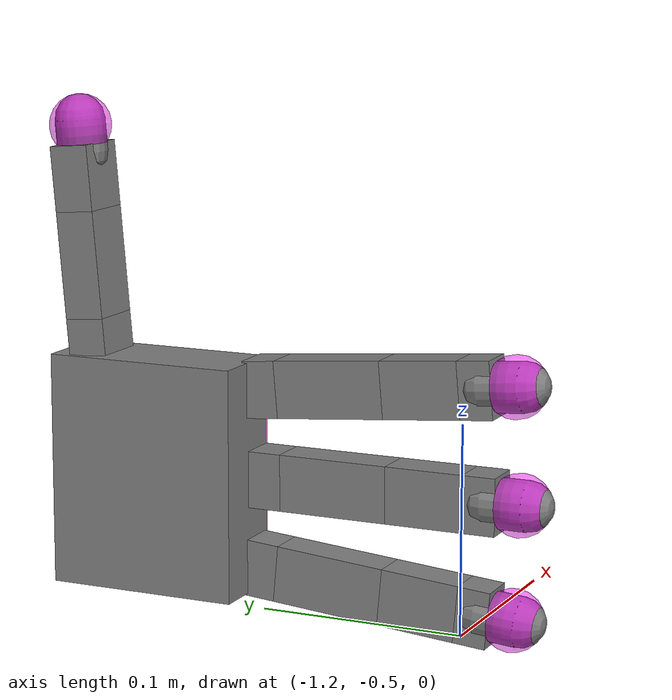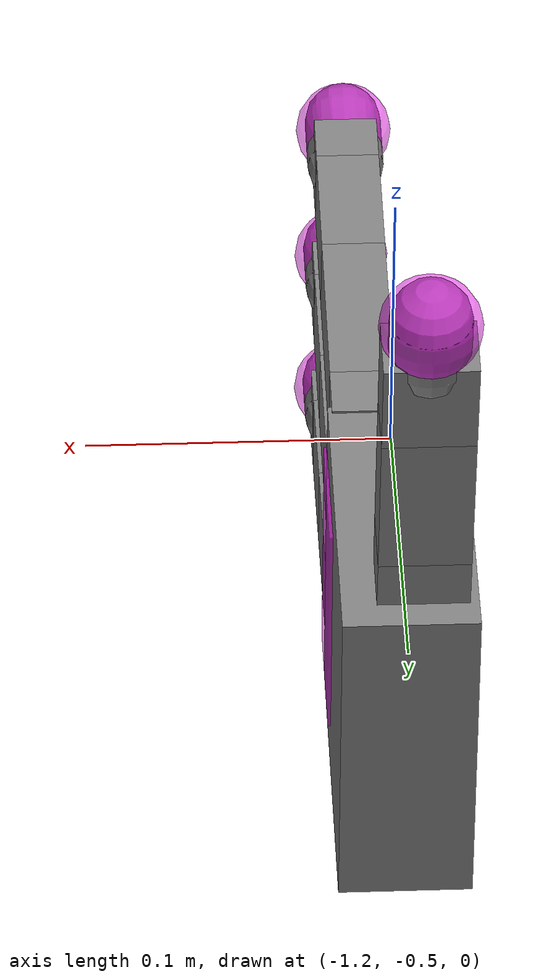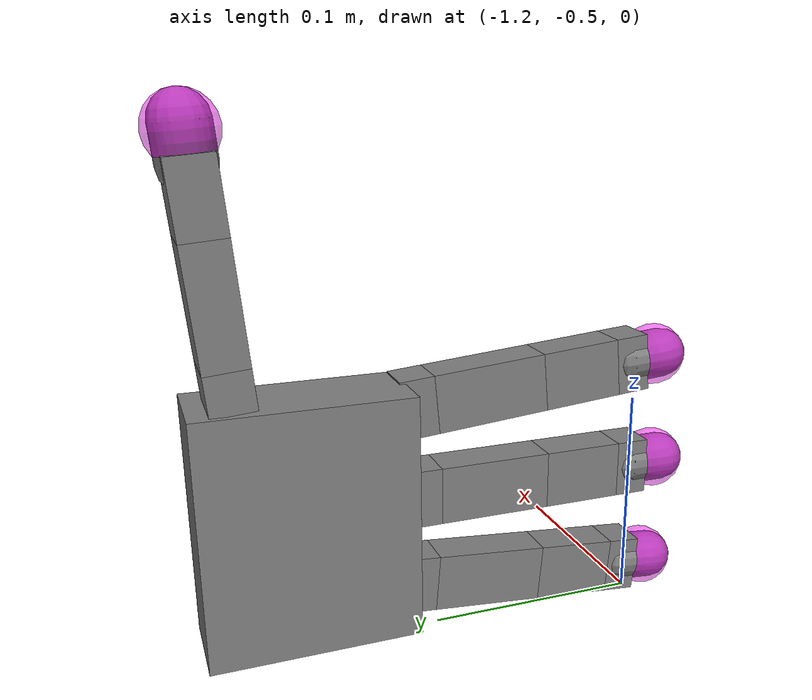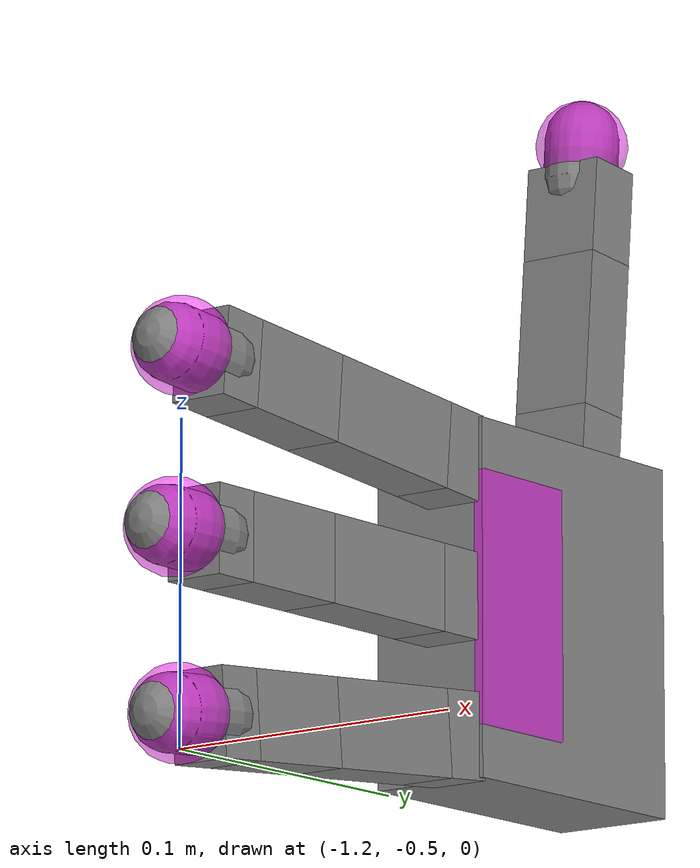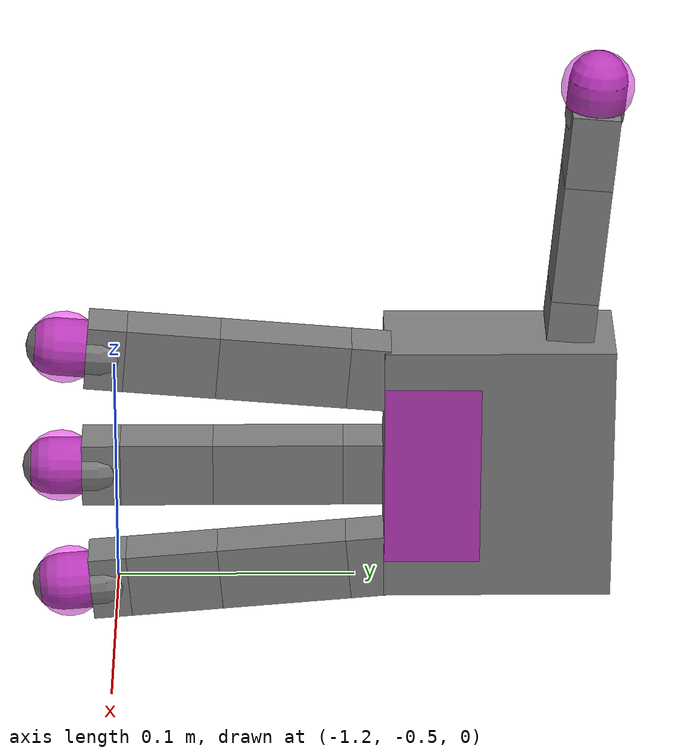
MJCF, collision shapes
<mujoco model="allegro_right">
  <!-- Match your repo layout (included from mj/full_combined.xml) -->
  <compiler angle="radian" meshdir="../assets/allegro/assets/" autolimits="true"/>

  <option cone="elliptic" impratio="10"/>

  <!-- Defaults: all Allegro-specific classes are prefixed algr_* to avoid collisions -->
  <default>
    <default class="allegro_right">
      <joint axis="0 1 0" damping=".1"/>
      <position kp="1"/>
      <geom density="800"/>

      <!-- Visual defaults (renamed) -->
      <default class="algr_visual">
        <geom type="mesh" contype="0" conaffinity="0" group="2" material="algr_black"/>
        <default class="algr_palm_visual">
          <geom mesh="base_link"/>
        </default>
        <default class="algr_base_visual">
          <geom mesh="link_0.0"/>
        </default>
        <default class="algr_proximal_visual">
          <geom mesh="link_1.0"/>
        </default>
        <default class="algr_medial_visual">
          <geom mesh="link_2.0"/>
        </default>
        <default class="algr_distal_visual">
          <geom mesh="link_3.0"/>
        </default>
        <default class="algr_fingertip_visual">
          <geom pos="0 0 0.0267" material="algr_white" mesh="link_3.0_tip"/>
        </default>
        <default class="algr_thumbtip_visual">
          <geom pos="0 0 0.0423" material="algr_white" mesh="link_15.0_tip"/>
        </default>
      </default>

      <!-- Collision defaults (renamed) -->
      <default class="algr_collision">
        <geom group="3" type="box" mass="0"/>
        <default class="algr_palm_collision">
          <geom size="0.0204 0.0565 0.0475" pos="-0.0093 0 -0.0475"/>
        </default>
        <default class="algr_base_collision">
          <geom size="0.0098 0.01375 0.0082" pos="0 0 0.0082"/>
          <default class="algr_thumb_base_collision">
            <geom size="0.0179 0.017 0.02275" pos="-0.0179 0.009 0.0145"/>
          </default>
        </default>
        <default class="algr_proximal_collision">
          <geom size="0.0098 0.01375 0.027" pos="0 0 0.027"/>
          <default class="algr_thumb_proximal_collision">
            <geom size="0.0098 0.01375 0.00885" pos="0 0 0.00885"/>
          </default>
        </default>
        <default class="algr_medial_collision">
          <geom size="0.0098 0.01375 0.0192" pos="0 0 0.0192"/>
          <default class="algr_thumb_medial_collision">
            <geom size="0.0098 0.01375 0.0257" pos="0 0 0.0257"/>
          </default>
        </default>
        <default class="algr_distal_collision">
          <geom size="0.0098 0.01375 0.008" pos="0 0 0.008"/>
          <default class="algr_thumb_distal_collision">
            <geom size="0.0098 0.01375 0.0157" pos="0 0 0.0157"/>
          </default>
        </default>
        <default class="algr_fingertip_collision">
          <geom type="capsule" size="0.012 0.01" pos="0 0 0.019"/>
          <default class="algr_thumbtip_collision">
            <geom type="capsule" size="0.012 0.008" pos="0 0 0.035"/>
          </default>
        </default>
      </default>

      <!-- These actuator/joint default classes don't collide with UR; keep as-is -->
      <default class="base">
        <joint axis="0 0 1" range="-0.47 0.47"/>
        <position ctrlrange="-0.47 0.47"/>
      </default>
      <default class="proximal">
        <joint range="-0.196 1.61"/>
        <position ctrlrange="-0.196 1.61"/>
      </default>
      <default class="medial">
        <joint range="-0.174 1.709"/>
        <position ctrlrange="-0.174 1.709"/>
      </default>
      <default class="distal">
        <joint range="-0.227 1.618"/>
        <position ctrlrange="-0.227 1.618"/>
      </default>
      <default class="thumb_base">
        <joint axis="-1 0 0" range="0.263 1.396"/>
        <position ctrlrange="0.263 1.396"/>
      </default>
      <default class="thumb_proximal">
        <joint axis="0 0 1" range="-0.105 1.163"/>
        <position ctrlrange="-0.105 1.163"/>
      </default>
      <default class="thumb_medial">
        <joint range="-0.189 1.644"/>
        <position ctrlrange="-0.189 1.644"/>
      </default>
      <default class="thumb_distal">
        <joint range="-0.162 1.719"/>
        <position ctrlrange="-0.162 1.719"/>
      </default>
    </default>
  </default>

  <!-- Unique material names to avoid conflicts with UR's "black"/"white" -->
  <asset>
    <material name="algr_black" rgba="0.2 0.2 0.2 1"/>
    <material name="algr_white" rgba="0.9 0.9 0.9 1"/>

    <mesh file="../allegro/assets/base_link.stl"/>
    <mesh file="../allegro/assets/link_0.0.stl"/>
    <mesh file="../allegro/assets/link_1.0.stl"/>
    <mesh file="../allegro/assets/link_2.0.stl"/>
    <mesh file="../allegro/assets/link_3.0.stl"/>
    <mesh file="../allegro/assets/link_3.0_tip.stl"/>
    <mesh file="../allegro/assets/link_12.0_right.stl"/>
    <mesh file="../allegro/assets/link_13.0.stl"/>
    <mesh file="../allegro/assets/link_14.0.stl"/>
    <mesh file="../allegro/assets/link_15.0.stl"/>
    <mesh file="../allegro/assets/link_15.0_tip.stl"/>
  </asset>

  <worldbody>
    <body name="palm" pos="-1.184000 -0.388000 0.061000" quat="0.707107 0.707107 0.000000 0.000000" childclass="allegro_right">
      <site name="palm_axis" pos="0 0 0" size="0.01" rgba="1 1 1 0"/>
      <site name="palm_grid_site"
      type="box" size="0.02 0.04 0.002"
      pos="0.01 0.0 -0.02"
      quat="0.70710678 0 0.70710678 0"
      rgba="1 0 1 0.5"/>
      <joint name="palm_free" type="free"/>
      <geom class="algr_palm_visual"/>
      <geom class="algr_palm_collision"/>

      <!-- First finger -->
      <body name="ff_base" pos="0 0.0435 -0.001542" quat="0.999048 -0.0436194 0 0">
        <joint name="ffj0" class="base"/>
        <geom class="algr_base_visual"/>
        <geom class="algr_base_collision"/>
        <body name="ff_proximal" pos="0 0 0.0164">
          <joint name="ffj1" class="proximal"/>
          <geom class="algr_proximal_visual"/>
          <geom class="algr_proximal_collision"/>
          <body name="ff_medial" pos="0 0 0.054">
            <joint name="ffj2" class="medial"/>
            <geom class="algr_medial_visual"/>
            <geom class="algr_medial_collision"/>
            <body name="ff_distal" pos="0 0 0.0384">
              <joint name="ffj3" class="distal"/>
              <geom class="algr_distal_visual"/>
              <geom class="algr_distal_collision"/>
              <body name="ff_tip">
                <site name="ff_tip_grid_site"
                  pos="0 0 0.025"
                  quat="1 0 0 0"
                  type="sphere" size="0.015"
                  rgba="1 0 1 0.5"/>
                <geom class="algr_fingertip_visual"/>
                <geom class="algr_fingertip_collision"/>
              </body>
            </body>
          </body>
        </body>
      </body>

      <!-- Middle finger -->
      <body name="mf_base" pos="0 0 0.0007">
        <joint name="mfj0" class="base"/>
        <geom class="algr_base_visual"/>
        <geom class="algr_base_collision"/>
        <body name="mf_proximal" pos="0 0 0.0164">
          <joint name="mfj1" class="proximal"/>
          <geom class="algr_proximal_visual"/>
          <geom class="algr_proximal_collision"/>
          <body name="mf_medial" pos="0 0 0.054">
            <joint name="mfj2" class="medial"/>
            <geom class="algr_medial_visual"/>
            <geom class="algr_medial_collision"/>
            <body name="mf_distal" pos="0 0 0.0384">
              <joint name="mfj3" class="distal"/>
              <geom class="algr_distal_visual"/>
              <geom class="algr_distal_collision"/>
              <body name="mf_tip">
                <site name="mf_tip_grid_site"
                  pos="0 0 0.025"
                  quat="1 0 0 0"
                  type="sphere" size="0.015"
                  rgba="1 0 1 0.5"/>
                <geom class="algr_fingertip_visual"/>
                <geom class="algr_fingertip_collision"/>
              </body>
            </body>
          </body>
        </body>
      </body>

      <!-- Ring finger -->
      <body name="rf_base" pos="0 -0.0435 -0.001542" quat="0.999048 0.0436194 0 0">
        <joint name="rfj0" class="base"/>
        <geom class="algr_base_visual"/>
        <geom class="algr_base_collision"/>
        <body name="rf_proximal" pos="0 0 0.0164">
          <joint name="rfj1" class="proximal"/>
          <geom class="algr_proximal_visual"/>
          <geom class="algr_proximal_collision"/>
          <body name="rf_medial" pos="0 0 0.054">
            <joint name="rfj2" class="medial"/>
            <geom class="algr_medial_visual"/>
            <geom class="algr_medial_collision"/>
            <body name="rf_distal" pos="0 0 0.0384">
              <joint name="rfj3" class="distal"/>
              <geom class="algr_distal_visual"/>
              <geom class="algr_distal_collision"/>
              <body name="rf_tip">
                <site name="rf_tip_grid_site"
                  pos="0 0 0.025"
                  quat="1 0 0 0"
                  type="sphere" size="0.015"
                  rgba="1 0 1 0.5"/>
                <geom class="algr_fingertip_visual"/>
                <geom class="algr_fingertip_collision"/>
              </body>
            </body>
          </body>
        </body>
      </body>

      <!-- Thumb -->
      <body name="th_base" pos="-0.0182 0.019333 -0.045987" quat="0.477714 -0.521334 -0.521334 -0.477714">
        <joint name="thj0" class="thumb_base"/>
        <geom class="algr_visual" mesh="link_12.0_right"/>
        <geom class="algr_thumb_base_collision"/>
        <body name="th_proximal" pos="-0.027 0.005 0.0399">
          <joint name="thj1" class="thumb_proximal"/>
          <geom class="algr_visual" mesh="link_13.0"/>
          <geom class="algr_thumb_proximal_collision"/>
          <body name="th_medial" pos="0 0 0.0177">
            <joint name="thj2" class="thumb_medial"/>
            <geom class="algr_visual" mesh="link_14.0"/>
            <geom class="algr_thumb_medial_collision"/>
            <body name="th_distal" pos="0 0 0.0514">
              <joint name="thj3" class="thumb_distal"/>
              <geom class="algr_visual" mesh="link_15.0"/>
              <geom class="algr_thumb_distal_collision"/>
              <body name="th_tip">
                <site name="th_tip_grid_site"
                  pos="0 0 0.040"
                  quat="1 0 0 0"
                  type="sphere" size="0.015"
                  rgba="1 0 1 0.5"/>
                <geom class="algr_thumbtip_visual"/>
                <geom class="algr_thumbtip_collision"/>
              </body>
            </body>
          </body>
        </body>
      </body>
    </body>
  </worldbody>

  <contact>
    <exclude body1="palm" body2="ff_base"/>
    <exclude body1="palm" body2="mf_base"/>
    <exclude body1="palm" body2="rf_base"/>
    <exclude body1="palm" body2="th_base"/>
    <exclude body1="palm" body2="th_proximal"/>
  </contact>

  <actuator>
    <position name="ffa0" joint="ffj0" class="base"/>
    <position name="ffa1" joint="ffj1" class="proximal"/>
    <position name="ffa2" joint="ffj2" class="medial"/>
    <position name="ffa3" joint="ffj3" class="distal"/>
    <position name="mfa0" joint="mfj0" class="base"/>
    <position name="mfa1" joint="mfj1" class="proximal"/>
    <position name="mfa2" joint="mfj2" class="medial"/>
    <position name="mfa3" joint="mfj3" class="distal"/>
    <position name="rfa0" joint="rfj0" class="base"/>
    <position name="rfa1" joint="rfj1" class="proximal"/>
    <position name="rfa2" joint="rfj2" class="medial"/>
    <position name="rfa3" joint="rfj3" class="distal"/>
    <position name="tha0" joint="thj0" class="thumb_base"/>
    <position name="tha1" joint="thj1" class="thumb_proximal"/>
    <position name="tha2" joint="thj2" class="thumb_medial"/>
    <position name="tha3" joint="thj3" class="thumb_distal"/>
  </actuator>
</mujoco>
